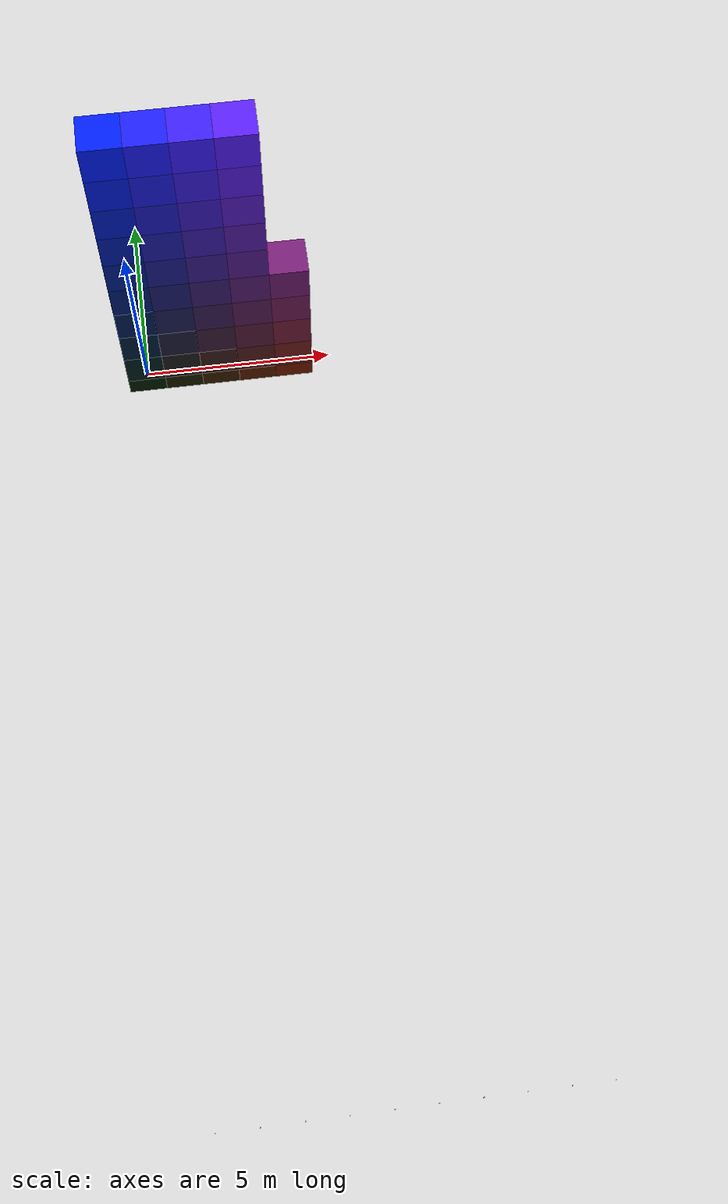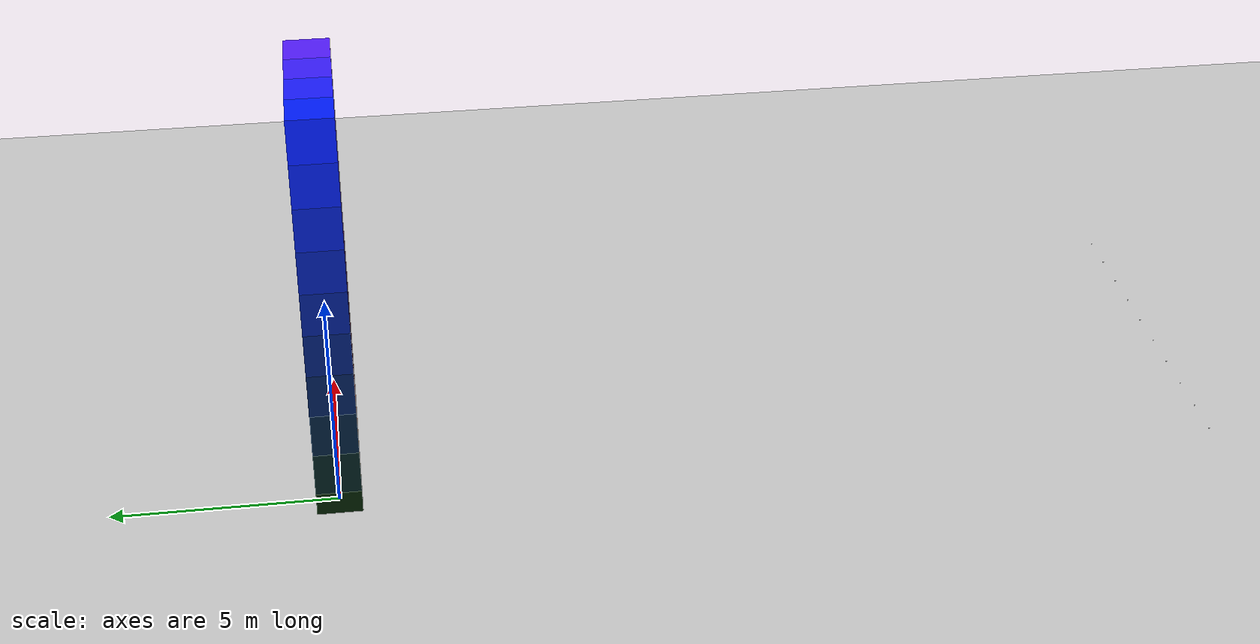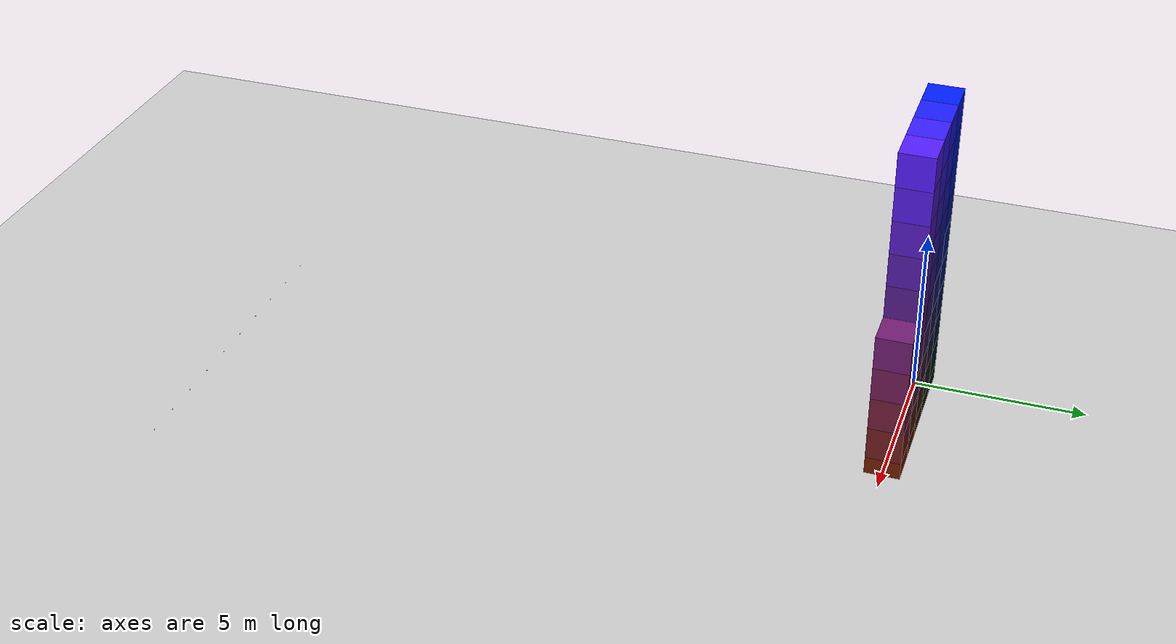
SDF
<sdf version="1.6">
 <world name="default">
  <model name="ground_plane">
   <static>true</static>
   <link name="link">
    <collision name="collision"><geometry><plane><normal>0 0 1</normal></plane></geometry></collision>
    <visual name="visual">
     <geometry><plane><normal>0 0 1</normal><size>100 100</size></plane></geometry>
     <material>
      <ambient>0.8 0.8 0.8 1</ambient>
      <diffuse>0.8 0.8 0.8 1</diffuse>
      <specular>0.8 0.8 0.8 1</specular>
     </material>
    </visual>
   </link>
  </model>
  <model name="camera_0">
   <static>true</static>
   <pose>0.0 -20 0 0 0 1.5707</pose>
   <link name="base_link">
    <visual name="camera_visual"><geometry><box><size>0.02 0.02 0.02</size></box></geometry></visual>
    <sensor name="camera_sensor_0" type="camera">
     <always_on>1</always_on>
     <update_rate>50</update_rate>
     <camera name="camera_front">
      <pose>0 0 0 0 -1.5707 1.5707</pose>
      <horizontal_fov>1.0472</horizontal_fov>
      <distortion><k1>0.0</k1><k2>0.0</k2><k3>0.0</k3><p1>0.0</p1><p2>0.0</p2><center>0.5 0.5</center></distortion>
      <image><width>1280</width><height>960</height><format>R8G8B8</format></image>
      <clip><near>0.01</near><far>300</far></clip>
      <noise><type>gaussian</type><mean>0</mean><stddev>0.007</stddev></noise>
     </camera>
    </sensor>
   </link>
  </model>
  <model name="camera_1">
   <static>true</static>
   <pose>1.0 -20 0 0 0 1.5707</pose>
   <link name="base_link">
    <visual name="camera_visual"><geometry><box><size>0.02 0.02 0.02</size></box></geometry></visual>
    <sensor name="camera_sensor_1" type="camera">
     <always_on>1</always_on>
     <update_rate>50</update_rate>
     <camera name="camera_front">
      <pose>0 0 0 0 -1.5707 1.5707</pose>
      <horizontal_fov>1.0472</horizontal_fov>
      <distortion><k1>0.0</k1><k2>0.0</k2><k3>0.0</k3><p1>0.0</p1><p2>0.0</p2><center>0.5 0.5</center></distortion>
      <image><width>1280</width><height>960</height><format>R8G8B8</format></image>
      <clip><near>0.01</near><far>300</far></clip>
      <noise><type>gaussian</type><mean>0</mean><stddev>0.007</stddev></noise>
     </camera>
    </sensor>
   </link>
  </model>
  <model name="camera_2">
   <static>true</static>
   <pose>2.0 -20 0 0 0 1.5707</pose>
   <link name="base_link">
    <visual name="camera_visual"><geometry><box><size>0.02 0.02 0.02</size></box></geometry></visual>
    <sensor name="camera_sensor_2" type="camera">
     <always_on>1</always_on>
     <update_rate>50</update_rate>
     <camera name="camera_front">
      <pose>0 0 0 0 -1.5707 1.5707</pose>
      <horizontal_fov>1.0472</horizontal_fov>
      <distortion><k1>0.0</k1><k2>0.0</k2><k3>0.0</k3><p1>0.0</p1><p2>0.0</p2><center>0.5 0.5</center></distortion>
      <image><width>1280</width><height>960</height><format>R8G8B8</format></image>
      <clip><near>0.01</near><far>300</far></clip>
      <noise><type>gaussian</type><mean>0</mean><stddev>0.007</stddev></noise>
     </camera>
    </sensor>
   </link>
  </model>
  <model name="camera_3">
   <static>true</static>
   <pose>3.0 -20 0 0 0 1.5707</pose>
   <link name="base_link">
    <visual name="camera_visual"><geometry><box><size>0.02 0.02 0.02</size></box></geometry></visual>
    <sensor name="camera_sensor_3" type="camera">
     <always_on>1</always_on>
     <update_rate>50</update_rate>
     <camera name="camera_front">
      <pose>0 0 0 0 -1.5707 1.5707</pose>
      <horizontal_fov>1.0472</horizontal_fov>
      <distortion><k1>0.0</k1><k2>0.0</k2><k3>0.0</k3><p1>0.0</p1><p2>0.0</p2><center>0.5 0.5</center></distortion>
      <image><width>1280</width><height>960</height><format>R8G8B8</format></image>
      <clip><near>0.01</near><far>300</far></clip>
      <noise><type>gaussian</type><mean>0</mean><stddev>0.007</stddev></noise>
     </camera>
    </sensor>
   </link>
  </model>
  <model name="camera_4">
   <static>true</static>
   <pose>4.0 -20 0 0 0 1.5707</pose>
   <link name="base_link">
    <visual name="camera_visual"><geometry><box><size>0.02 0.02 0.02</size></box></geometry></visual>
    <sensor name="camera_sensor_4" type="camera">
     <always_on>1</always_on>
     <update_rate>50</update_rate>
     <camera name="camera_front">
      <pose>0 0 0 0 -1.5707 1.5707</pose>
      <horizontal_fov>1.0472</horizontal_fov>
      <distortion><k1>0.0</k1><k2>0.0</k2><k3>0.0</k3><p1>0.0</p1><p2>0.0</p2><center>0.5 0.5</center></distortion>
      <image><width>1280</width><height>960</height><format>R8G8B8</format></image>
      <clip><near>0.01</near><far>300</far></clip>
      <noise><type>gaussian</type><mean>0</mean><stddev>0.007</stddev></noise>
     </camera>
    </sensor>
   </link>
  </model>
  <model name="camera_5">
   <static>true</static>
   <pose>5.0 -20 0 0 0 1.5707</pose>
   <link name="base_link">
    <visual name="camera_visual"><geometry><box><size>0.02 0.02 0.02</size></box></geometry></visual>
    <sensor name="camera_sensor_5" type="camera">
     <always_on>1</always_on>
     <update_rate>50</update_rate>
     <camera name="camera_front">
      <pose>0 0 0 0 -1.5707 1.5707</pose>
      <horizontal_fov>1.0472</horizontal_fov>
      <distortion><k1>0.0</k1><k2>0.0</k2><k3>0.0</k3><p1>0.0</p1><p2>0.0</p2><center>0.5 0.5</center></distortion>
      <image><width>1280</width><height>960</height><format>R8G8B8</format></image>
      <clip><near>0.01</near><far>300</far></clip>
      <noise><type>gaussian</type><mean>0</mean><stddev>0.007</stddev></noise>
     </camera>
    </sensor>
   </link>
  </model>
  <model name="camera_6">
   <static>true</static>
   <pose>6.0 -20 0 0 0 1.5707</pose>
   <link name="base_link">
    <visual name="camera_visual"><geometry><box><size>0.02 0.02 0.02</size></box></geometry></visual>
    <sensor name="camera_sensor_6" type="camera">
     <always_on>1</always_on>
     <update_rate>50</update_rate>
     <camera name="camera_front">
      <pose>0 0 0 0 -1.5707 1.5707</pose>
      <horizontal_fov>1.0472</horizontal_fov>
      <distortion><k1>0.0</k1><k2>0.0</k2><k3>0.0</k3><p1>0.0</p1><p2>0.0</p2><center>0.5 0.5</center></distortion>
      <image><width>1280</width><height>960</height><format>R8G8B8</format></image>
      <clip><near>0.01</near><far>300</far></clip>
      <noise><type>gaussian</type><mean>0</mean><stddev>0.007</stddev></noise>
     </camera>
    </sensor>
   </link>
  </model>
  <model name="camera_7">
   <static>true</static>
   <pose>7.0 -20 0 0 0 1.5707</pose>
   <link name="base_link">
    <visual name="camera_visual"><geometry><box><size>0.02 0.02 0.02</size></box></geometry></visual>
    <sensor name="camera_sensor_7" type="camera">
     <always_on>1</always_on>
     <update_rate>50</update_rate>
     <camera name="camera_front">
      <pose>0 0 0 0 -1.5707 1.5707</pose>
      <horizontal_fov>1.0472</horizontal_fov>
      <distortion><k1>0.0</k1><k2>0.0</k2><k3>0.0</k3><p1>0.0</p1><p2>0.0</p2><center>0.5 0.5</center></distortion>
      <image><width>1280</width><height>960</height><format>R8G8B8</format></image>
      <clip><near>0.01</near><far>300</far></clip>
      <noise><type>gaussian</type><mean>0</mean><stddev>0.007</stddev></noise>
     </camera>
    </sensor>
   </link>
  </model>
  <model name="camera_8">
   <static>true</static>
   <pose>8.0 -20 0 0 0 1.5707</pose>
   <link name="base_link">
    <visual name="camera_visual"><geometry><box><size>0.02 0.02 0.02</size></box></geometry></visual>
    <sensor name="camera_sensor_8" type="camera">
     <always_on>1</always_on>
     <update_rate>50</update_rate>
     <camera name="camera_front">
      <pose>0 0 0 0 -1.5707 1.5707</pose>
      <horizontal_fov>1.0472</horizontal_fov>
      <distortion><k1>0.0</k1><k2>0.0</k2><k3>0.0</k3><p1>0.0</p1><p2>0.0</p2><center>0.5 0.5</center></distortion>
      <image><width>1280</width><height>960</height><format>R8G8B8</format></image>
      <clip><near>0.01</near><far>300</far></clip>
      <noise><type>gaussian</type><mean>0</mean><stddev>0.007</stddev></noise>
     </camera>
    </sensor>
   </link>
  </model>
  <model name="camera_9">
   <static>true</static>
   <pose>9.0 -20 0 0 0 1.5707</pose>
   <link name="base_link">
    <visual name="camera_visual"><geometry><box><size>0.02 0.02 0.02</size></box></geometry></visual>
    <sensor name="camera_sensor_9" type="camera">
     <always_on>1</always_on>
     <update_rate>50</update_rate>
     <camera name="camera_front">
      <pose>0 0 0 0 -1.5707 1.5707</pose>
      <horizontal_fov>1.0472</horizontal_fov>
      <distortion><k1>0.0</k1><k2>0.0</k2><k3>0.0</k3><p1>0.0</p1><p2>0.0</p2><center>0.5 0.5</center></distortion>
      <image><width>1280</width><height>960</height><format>R8G8B8</format></image>
      <clip><near>0.01</near><far>300</far></clip>
      <noise><type>gaussian</type><mean>0</mean><stddev>0.007</stddev></noise>
     </camera>
    </sensor>
   </link>
  </model>
  <model name="model_0_1.0_0">
   <static>true</static>
   <link name="box_link">
    <inertial>
     <inertia><ixx>1</ixx><ixy>0</ixy><ixz>0</ixz><iyy>1</iyy><iyz>0</iyz><izz>1</izz></inertia>
     <mass>5.0</mass>
    </inertial>
    <collision name="box_collision"><geometry><box><size>1 1 1</size></box></geometry></collision>
    <visual name="box_visual">
     <geometry><box><size>1 1 1</size></box></geometry>
     <material>
      <ambient>0.0
              0.1111111111111111
              0.0
              1</ambient>
      <diffuse>0.0
              0.1111111111111111
              0.0
              1</diffuse>
      <specular>0.0
              0.1111111111111111
              0.0
              1</specular>
     </material>
    </visual>
   </link>
  </model>
  <model name="model_0_1.0_1">
   <static>true</static>
   <pose>0.0
        0.0
        1.0
        0.0
        0.0
        0.0</pose>
   <link name="box_link">
    <inertial>
     <inertia><ixx>1</ixx><ixy>0</ixy><ixz>0</ixz><iyy>1</iyy><iyz>0</iyz><izz>1</izz></inertia>
     <mass>5.0</mass>
    </inertial>
    <collision name="box_collision"><geometry><box><size>1 1 1</size></box></geometry></collision>
    <visual name="box_visual">
     <geometry><box><size>1 1 1</size></box></geometry>
     <material>
      <ambient>0.0
              0.1111111111111111
              0.1111111111111111
              1</ambient>
      <diffuse>0.0
              0.1111111111111111
              0.1111111111111111
              1</diffuse>
      <specular>0.0
              0.1111111111111111
              0.1111111111111111
              1</specular>
     </material>
    </visual>
   </link>
  </model>
  <model name="model_0_1.0_2">
   <static>true</static>
   <pose>0.0
        0.0
        2.0
        0.0
        0.0
        0.0</pose>
   <link name="box_link">
    <inertial>
     <inertia><ixx>1</ixx><ixy>0</ixy><ixz>0</ixz><iyy>1</iyy><iyz>0</iyz><izz>1</izz></inertia>
     <mass>5.0</mass>
    </inertial>
    <collision name="box_collision"><geometry><box><size>1 1 1</size></box></geometry></collision>
    <visual name="box_visual">
     <geometry><box><size>1 1 1</size></box></geometry>
     <material>
      <ambient>0.0
              0.1111111111111111
              0.2222222222222222
              1</ambient>
      <diffuse>0.0
              0.1111111111111111
              0.2222222222222222
              1</diffuse>
      <specular>0.0
              0.1111111111111111
              0.2222222222222222
              1</specular>
     </material>
    </visual>
   </link>
  </model>
  <model name="model_0_1.0_3">
   <static>true</static>
   <pose>0.0
        0.0
        3.0
        0.0
        0.0
        0.0</pose>
   <link name="box_link">
    <inertial>
     <inertia><ixx>1</ixx><ixy>0</ixy><ixz>0</ixz><iyy>1</iyy><iyz>0</iyz><izz>1</izz></inertia>
     <mass>5.0</mass>
    </inertial>
    <collision name="box_collision"><geometry><box><size>1 1 1</size></box></geometry></collision>
    <visual name="box_visual">
     <geometry><box><size>1 1 1</size></box></geometry>
     <material>
      <ambient>0.0
              0.1111111111111111
              0.3333333333333333
              1</ambient>
      <diffuse>0.0
              0.1111111111111111
              0.3333333333333333
              1</diffuse>
      <specular>0.0
              0.1111111111111111
              0.3333333333333333
              1</specular>
     </material>
    </visual>
   </link>
  </model>
  <model name="model_0_1.0_4">
   <static>true</static>
   <pose>0.0
        0.0
        4.0
        0.0
        0.0
        0.0</pose>
   <link name="box_link">
    <inertial>
     <inertia><ixx>1</ixx><ixy>0</ixy><ixz>0</ixz><iyy>1</iyy><iyz>0</iyz><izz>1</izz></inertia>
     <mass>5.0</mass>
    </inertial>
    <collision name="box_collision"><geometry><box><size>1 1 1</size></box></geometry></collision>
    <visual name="box_visual">
     <geometry><box><size>1 1 1</size></box></geometry>
     <material>
      <ambient>0.0
              0.1111111111111111
              0.4444444444444444
              1</ambient>
      <diffuse>0.0
              0.1111111111111111
              0.4444444444444444
              1</diffuse>
      <specular>0.0
              0.1111111111111111
              0.4444444444444444
              1</specular>
     </material>
    </visual>
   </link>
  </model>
  <model name="model_0_1.0_5">
   <static>true</static>
   <pose>0.0
        0.0
        5.0
        0.0
        0.0
        0.0</pose>
   <link name="box_link">
    <inertial>
     <inertia><ixx>1</ixx><ixy>0</ixy><ixz>0</ixz><iyy>1</iyy><iyz>0</iyz><izz>1</izz></inertia>
     <mass>5.0</mass>
    </inertial>
    <collision name="box_collision"><geometry><box><size>1 1 1</size></box></geometry></collision>
    <visual name="box_visual">
     <geometry><box><size>1 1 1</size></box></geometry>
     <material>
      <ambient>0.0
              0.1111111111111111
              0.5555555555555556
              1</ambient>
      <diffuse>0.0
              0.1111111111111111
              0.5555555555555556
              1</diffuse>
      <specular>0.0
              0.1111111111111111
              0.5555555555555556
              1</specular>
     </material>
    </visual>
   </link>
  </model>
  <model name="model_0_1.0_6">
   <static>true</static>
   <pose>0.0
        0.0
        6.0
        0.0
        0.0
        0.0</pose>
   <link name="box_link">
    <inertial>
     <inertia><ixx>1</ixx><ixy>0</ixy><ixz>0</ixz><iyy>1</iyy><iyz>0</iyz><izz>1</izz></inertia>
     <mass>5.0</mass>
    </inertial>
    <collision name="box_collision"><geometry><box><size>1 1 1</size></box></geometry></collision>
    <visual name="box_visual">
     <geometry><box><size>1 1 1</size></box></geometry>
     <material>
      <ambient>0.0
              0.1111111111111111
              0.6666666666666666
              1</ambient>
      <diffuse>0.0
              0.1111111111111111
              0.6666666666666666
              1</diffuse>
      <specular>0.0
              0.1111111111111111
              0.6666666666666666
              1</specular>
     </material>
    </visual>
   </link>
  </model>
  <model name="model_0_1.0_7">
   <static>true</static>
   <pose>0.0
        0.0
        7.0
        0.0
        0.0
        0.0</pose>
   <link name="box_link">
    <inertial>
     <inertia><ixx>1</ixx><ixy>0</ixy><ixz>0</ixz><iyy>1</iyy><iyz>0</iyz><izz>1</izz></inertia>
     <mass>5.0</mass>
    </inertial>
    <collision name="box_collision"><geometry><box><size>1 1 1</size></box></geometry></collision>
    <visual name="box_visual">
     <geometry><box><size>1 1 1</size></box></geometry>
     <material>
      <ambient>0.0
              0.1111111111111111
              0.7777777777777778
              1</ambient>
      <diffuse>0.0
              0.1111111111111111
              0.7777777777777778
              1</diffuse>
      <specular>0.0
              0.1111111111111111
              0.7777777777777778
              1</specular>
     </material>
    </visual>
   </link>
  </model>
  <model name="model_0_1.0_8">
   <static>true</static>
   <pose>0.0
        0.0
        8.0
        0.0
        0.0
        0.0</pose>
   <link name="box_link">
    <inertial>
     <inertia><ixx>1</ixx><ixy>0</ixy><ixz>0</ixz><iyy>1</iyy><iyz>0</iyz><izz>1</izz></inertia>
     <mass>5.0</mass>
    </inertial>
    <collision name="box_collision"><geometry><box><size>1 1 1</size></box></geometry></collision>
    <visual name="box_visual">
     <geometry><box><size>1 1 1</size></box></geometry>
     <material>
      <ambient>0.0
              0.1111111111111111
              0.8888888888888888
              1</ambient>
      <diffuse>0.0
              0.1111111111111111
              0.8888888888888888
              1</diffuse>
      <specular>0.0
              0.1111111111111111
              0.8888888888888888
              1</specular>
     </material>
    </visual>
   </link>
  </model>
  <model name="model_0_1.0_9">
   <static>true</static>
   <pose>0.0
        0.0
        9.0
        0.0
        0.0
        0.0</pose>
   <link name="box_link">
    <inertial>
     <inertia><ixx>1</ixx><ixy>0</ixy><ixz>0</ixz><iyy>1</iyy><iyz>0</iyz><izz>1</izz></inertia>
     <mass>5.0</mass>
    </inertial>
    <collision name="box_collision"><geometry><box><size>1 1 1</size></box></geometry></collision>
    <visual name="box_visual">
     <geometry><box><size>1 1 1</size></box></geometry>
     <material>
      <ambient>0.0
              0.1111111111111111
              1.0
              1</ambient>
      <diffuse>0.0
              0.1111111111111111
              1.0
              1</diffuse>
      <specular>0.0
              0.1111111111111111
              1.0
              1</specular>
     </material>
    </visual>
   </link>
  </model>
  <model name="model_1_1.0_0">
   <static>true</static>
   <pose>1.0
        0.0
        0.0
        0.0
        0.0
        0.0</pose>
   <link name="box_link">
    <inertial>
     <inertia><ixx>1</ixx><ixy>0</ixy><ixz>0</ixz><iyy>1</iyy><iyz>0</iyz><izz>1</izz></inertia>
     <mass>5.0</mass>
    </inertial>
    <collision name="box_collision"><geometry><box><size>1 1 1</size></box></geometry></collision>
    <visual name="box_visual">
     <geometry><box><size>1 1 1</size></box></geometry>
     <material>
      <ambient>0.1111111111111111
              0.1111111111111111
              0.0
              1</ambient>
      <diffuse>0.1111111111111111
              0.1111111111111111
              0.0
              1</diffuse>
      <specular>0.1111111111111111
              0.1111111111111111
              0.0
              1</specular>
     </material>
    </visual>
   </link>
  </model>
  <model name="model_1_1.0_1">
   <static>true</static>
   <pose>1.0
        0.0
        1.0
        0.0
        0.0
        0.0</pose>
   <link name="box_link">
    <inertial>
     <inertia><ixx>1</ixx><ixy>0</ixy><ixz>0</ixz><iyy>1</iyy><iyz>0</iyz><izz>1</izz></inertia>
     <mass>5.0</mass>
    </inertial>
    <collision name="box_collision"><geometry><box><size>1 1 1</size></box></geometry></collision>
    <visual name="box_visual">
     <geometry><box><size>1 1 1</size></box></geometry>
     <material>
      <ambient>0.1111111111111111
              0.1111111111111111
              0.1111111111111111
              1</ambient>
      <diffuse>0.1111111111111111
              0.1111111111111111
              0.1111111111111111
              1</diffuse>
      <specular>0.1111111111111111
              0.1111111111111111
              0.1111111111111111
              1</specular>
     </material>
    </visual>
   </link>
  </model>
  <model name="model_1_1.0_2">
   <static>true</static>
   <pose>1.0
        0.0
        2.0
        0.0
        0.0
        0.0</pose>
   <link name="box_link">
    <inertial>
     <inertia><ixx>1</ixx><ixy>0</ixy><ixz>0</ixz><iyy>1</iyy><iyz>0</iyz><izz>1</izz></inertia>
     <mass>5.0</mass>
    </inertial>
    <collision name="box_collision"><geometry><box><size>1 1 1</size></box></geometry></collision>
    <visual name="box_visual">
     <geometry><box><size>1 1 1</size></box></geometry>
     <material>
      <ambient>0.1111111111111111
              0.1111111111111111
              0.2222222222222222
              1</ambient>
      <diffuse>0.1111111111111111
              0.1111111111111111
              0.2222222222222222
              1</diffuse>
      <specular>0.1111111111111111
              0.1111111111111111
              0.2222222222222222
              1</specular>
     </material>
    </visual>
   </link>
  </model>
  <model name="model_1_1.0_3">
   <static>true</static>
   <pose>1.0
        0.0
        3.0
        0.0
        0.0
        0.0</pose>
   <link name="box_link">
    <inertial>
     <inertia><ixx>1</ixx><ixy>0</ixy><ixz>0</ixz><iyy>1</iyy><iyz>0</iyz><izz>1</izz></inertia>
     <mass>5.0</mass>
    </inertial>
    <collision name="box_collision"><geometry><box><size>1 1 1</size></box></geometry></collision>
    <visual name="box_visual">
     <geometry><box><size>1 1 1</size></box></geometry>
     <material>
      <ambient>0.1111111111111111
              0.1111111111111111
              0.3333333333333333
              1</ambient>
      <diffuse>0.1111111111111111
              0.1111111111111111
              0.3333333333333333
              1</diffuse>
      <specular>0.1111111111111111
              0.1111111111111111
              0.3333333333333333
              1</specular>
     </material>
    </visual>
   </link>
  </model>
  <model name="model_1_1.0_4">
   <static>true</static>
   <pose>1.0
        0.0
        4.0
        0.0
        0.0
        0.0</pose>
   <link name="box_link">
    <inertial>
     <inertia><ixx>1</ixx><ixy>0</ixy><ixz>0</ixz><iyy>1</iyy><iyz>0</iyz><izz>1</izz></inertia>
     <mass>5.0</mass>
    </inertial>
    <collision name="box_collision"><geometry><box><size>1 1 1</size></box></geometry></collision>
    <visual name="box_visual">
     <geometry><box><size>1 1 1</size></box></geometry>
     <material>
      <ambient>0.1111111111111111
              0.1111111111111111
              0.4444444444444444
              1</ambient>
      <diffuse>0.1111111111111111
              0.1111111111111111
              0.4444444444444444
              1</diffuse>
      <specular>0.1111111111111111
              0.1111111111111111
              0.4444444444444444
              1</specular>
     </material>
    </visual>
   </link>
  </model>
  <model name="model_1_1.0_5">
   <static>true</static>
   <pose>1.0
        0.0
        5.0
        0.0
        0.0
        0.0</pose>
   <link name="box_link">
    <inertial>
     <inertia><ixx>1</ixx><ixy>0</ixy><ixz>0</ixz><iyy>1</iyy><iyz>0</iyz><izz>1</izz></inertia>
     <mass>5.0</mass>
    </inertial>
    <collision name="box_collision"><geometry><box><size>1 1 1</size></box></geometry></collision>
    <visual name="box_visual">
     <geometry><box><size>1 1 1</size></box></geometry>
     <material>
      <ambient>0.1111111111111111
              0.1111111111111111
              0.5555555555555556
              1</ambient>
      <diffuse>0.1111111111111111
              0.1111111111111111
              0.5555555555555556
              1</diffuse>
      <specular>0.1111111111111111
              0.1111111111111111
              0.5555555555555556
              1</specular>
     </material>
    </visual>
   </link>
  </model>
  <model name="model_1_1.0_6">
   <static>true</static>
   <pose>1.0
        0.0
        6.0
        0.0
        0.0
        0.0</pose>
   <link name="box_link">
    <inertial>
     <inertia><ixx>1</ixx><ixy>0</ixy><ixz>0</ixz><iyy>1</iyy><iyz>0</iyz><izz>1</izz></inertia>
     <mass>5.0</mass>
    </inertial>
    <collision name="box_collision"><geometry><box><size>1 1 1</size></box></geometry></collision>
    <visual name="box_visual">
     <geometry><box><size>1 1 1</size></box></geometry>
     <material>
      <ambient>0.1111111111111111
              0.1111111111111111
              0.6666666666666666
              1</ambient>
      <diffuse>0.1111111111111111
              0.1111111111111111
              0.6666666666666666
              1</diffuse>
      <specular>0.1111111111111111
              0.1111111111111111
              0.6666666666666666
              1</specular>
     </material>
    </visual>
   </link>
  </model>
  <model name="model_1_1.0_7">
   <static>true</static>
   <pose>1.0
        0.0
        7.0
        0.0
        0.0
        0.0</pose>
   <link name="box_link">
    <inertial>
     <inertia><ixx>1</ixx><ixy>0</ixy><ixz>0</ixz><iyy>1</iyy><iyz>0</iyz><izz>1</izz></inertia>
     <mass>5.0</mass>
    </inertial>
    <collision name="box_collision"><geometry><box><size>1 1 1</size></box></geometry></collision>
    <visual name="box_visual">
     <geometry><box><size>1 1 1</size></box></geometry>
     <material>
      <ambient>0.1111111111111111
              0.1111111111111111
              0.7777777777777778
              1</ambient>
      <diffuse>0.1111111111111111
              0.1111111111111111
              0.7777777777777778
              1</diffuse>
      <specular>0.1111111111111111
              0.1111111111111111
              0.7777777777777778
              1</specular>
     </material>
    </visual>
   </link>
  </model>
  <model name="model_1_1.0_8">
   <static>true</static>
   <pose>1.0
        0.0
        8.0
        0.0
        0.0
        0.0</pose>
   <link name="box_link">
    <inertial>
     <inertia><ixx>1</ixx><ixy>0</ixy><ixz>0</ixz><iyy>1</iyy><iyz>0</iyz><izz>1</izz></inertia>
     <mass>5.0</mass>
    </inertial>
    <collision name="box_collision"><geometry><box><size>1 1 1</size></box></geometry></collision>
    <visual name="box_visual">
     <geometry><box><size>1 1 1</size></box></geometry>
     <material>
      <ambient>0.1111111111111111
              0.1111111111111111
              0.8888888888888888
              1</ambient>
      <diffuse>0.1111111111111111
              0.1111111111111111
              0.8888888888888888
              1</diffuse>
      <specular>0.1111111111111111
              0.1111111111111111
              0.8888888888888888
              1</specular>
     </material>
    </visual>
   </link>
  </model>
  <model name="model_1_1.0_9">
   <static>true</static>
   <pose>1.0
        0.0
        9.0
        0.0
        0.0
        0.0</pose>
   <link name="box_link">
    <inertial>
     <inertia><ixx>1</ixx><ixy>0</ixy><ixz>0</ixz><iyy>1</iyy><iyz>0</iyz><izz>1</izz></inertia>
     <mass>5.0</mass>
    </inertial>
    <collision name="box_collision"><geometry><box><size>1 1 1</size></box></geometry></collision>
    <visual name="box_visual">
     <geometry><box><size>1 1 1</size></box></geometry>
     <material>
      <ambient>0.1111111111111111
              0.1111111111111111
              1.0
              1</ambient>
      <diffuse>0.1111111111111111
              0.1111111111111111
              1.0
              1</diffuse>
      <specular>0.1111111111111111
              0.1111111111111111
              1.0
              1</specular>
     </material>
    </visual>
   </link>
  </model>
  <model name="model_2_1.0_0">
   <static>true</static>
   <pose>2.0
        0.0
        0.0
        0.0
        0.0
        0.0</pose>
   <link name="box_link">
    <inertial>
     <inertia><ixx>1</ixx><ixy>0</ixy><ixz>0</ixz><iyy>1</iyy><iyz>0</iyz><izz>1</izz></inertia>
     <mass>5.0</mass>
    </inertial>
    <collision name="box_collision"><geometry><box><size>1 1 1</size></box></geometry></collision>
    <visual name="box_visual">
     <geometry><box><size>1 1 1</size></box></geometry>
     <material>
      <ambient>0.2222222222222222
              0.1111111111111111
              0.0
              1</ambient>
      <diffuse>0.2222222222222222
              0.1111111111111111
              0.0
              1</diffuse>
      <specular>0.2222222222222222
              0.1111111111111111
              0.0
              1</specular>
     </material>
    </visual>
   </link>
  </model>
  <model name="model_2_1.0_1">
   <static>true</static>
   <pose>2.0
        0.0
        1.0
        0.0
        0.0
        0.0</pose>
   <link name="box_link">
    <inertial>
     <inertia><ixx>1</ixx><ixy>0</ixy><ixz>0</ixz><iyy>1</iyy><iyz>0</iyz><izz>1</izz></inertia>
     <mass>5.0</mass>
    </inertial>
    <collision name="box_collision"><geometry><box><size>1 1 1</size></box></geometry></collision>
    <visual name="box_visual">
     <geometry><box><size>1 1 1</size></box></geometry>
     <material>
      <ambient>0.2222222222222222
              0.1111111111111111
              0.1111111111111111
              1</ambient>
      <diffuse>0.2222222222222222
              0.1111111111111111
              0.1111111111111111
              1</diffuse>
      <specular>0.2222222222222222
              0.1111111111111111
              0.1111111111111111
              1</specular>
     </material>
    </visual>
   </link>
  </model>
  <model name="model_2_1.0_2">
   <static>true</static>
   <pose>2.0
        0.0
        2.0
        0.0
        0.0
        0.0</pose>
   <link name="box_link">
    <inertial>
     <inertia><ixx>1</ixx><ixy>0</ixy><ixz>0</ixz><iyy>1</iyy><iyz>0</iyz><izz>1</izz></inertia>
     <mass>5.0</mass>
    </inertial>
    <collision name="box_collision"><geometry><box><size>1 1 1</size></box></geometry></collision>
    <visual name="box_visual">
     <geometry><box><size>1 1 1</size></box></geometry>
     <material>
      <ambient>0.2222222222222222
              0.1111111111111111
              0.2222222222222222
              1</ambient>
      <diffuse>0.2222222222222222
              0.1111111111111111
              0.2222222222222222
              1</diffuse>
      <specular>0.2222222222222222
              0.1111111111111111
              0.2222222222222222
              1</specular>
     </material>
    </visual>
   </link>
  </model>
  <model name="model_2_1.0_3">
   <static>true</static>
   <pose>2.0
        0.0
        3.0
        0.0
        0.0
        0.0</pose>
   <link name="box_link">
    <inertial>
     <inertia><ixx>1</ixx><ixy>0</ixy><ixz>0</ixz><iyy>1</iyy><iyz>0</iyz><izz>1</izz></inertia>
     <mass>5.0</mass>
    </inertial>
    <collision name="box_collision"><geometry><box><size>1 1 1</size></box></geometry></collision>
    <visual name="box_visual">
     <geometry><box><size>1 1 1</size></box></geometry>
     <material>
      <ambient>0.2222222222222222
              0.1111111111111111
              0.3333333333333333
              1</ambient>
      <diffuse>0.2222222222222222
              0.1111111111111111
              0.3333333333333333
              1</diffuse>
      <specular>0.2222222222222222
              0.1111111111111111
              0.3333333333333333
              1</specular>
     </material>
    </visual>
   </link>
  </model>
  <model name="model_2_1.0_4">
   <static>true</static>
   <pose>2.0
        0.0
        4.0
        0.0
        0.0
        0.0</pose>
   <link name="box_link">
    <inertial>
     <inertia><ixx>1</ixx><ixy>0</ixy><ixz>0</ixz><iyy>1</iyy><iyz>0</iyz><izz>1</izz></inertia>
     <mass>5.0</mass>
    </inertial>
    <collision name="box_collision"><geometry><box><size>1 1 1</size></box></geometry></collision>
    <visual name="box_visual">
     <geometry><box><size>1 1 1</size></box></geometry>
     <material>
      <ambient>0.2222222222222222
              0.1111111111111111
              0.4444444444444444
              1</ambient>
      <diffuse>0.2222222222222222
              0.1111111111111111
              0.4444444444444444
              1</diffuse>
      <specular>0.2222222222222222
              0.1111111111111111
              0.4444444444444444
              1</specular>
     </material>
    </visual>
   </link>
  </model>
  <model name="model_2_1.0_5">
   <static>true</static>
   <pose>2.0
        0.0
        5.0
        0.0
        0.0
        0.0</pose>
   <link name="box_link">
    <inertial>
     <inertia><ixx>1</ixx><ixy>0</ixy><ixz>0</ixz><iyy>1</iyy><iyz>0</iyz><izz>1</izz></inertia>
     <mass>5.0</mass>
    </inertial>
    <collision name="box_collision"><geometry><box><size>1 1 1</size></box></geometry></collision>
    <visual name="box_visual">
     <geometry><box><size>1 1 1</size></box></geometry>
     <material>
      <ambient>0.2222222222222222
              0.1111111111111111
              0.5555555555555556
              1</ambient>
      <diffuse>0.2222222222222222
              0.1111111111111111
              0.5555555555555556
              1</diffuse>
      <specular>0.2222222222222222
              0.1111111111111111
              0.5555555555555556
              1</specular>
     </material>
    </visual>
   </link>
  </model>
  <model name="model_2_1.0_6">
   <static>true</static>
   <pose>2.0
        0.0
        6.0
        0.0
        0.0
        0.0</pose>
   <link name="box_link">
    <inertial>
     <inertia><ixx>1</ixx><ixy>0</ixy><ixz>0</ixz><iyy>1</iyy><iyz>0</iyz><izz>1</izz></inertia>
     <mass>5.0</mass>
    </inertial>
    <collision name="box_collision"><geometry><box><size>1 1 1</size></box></geometry></collision>
    <visual name="box_visual">
     <geometry><box><size>1 1 1</size></box></geometry>
     <material>
      <ambient>0.2222222222222222
              0.1111111111111111
              0.6666666666666666
              1</ambient>
      <diffuse>0.2222222222222222
              0.1111111111111111
              0.6666666666666666
              1</diffuse>
      <specular>0.2222222222222222
              0.1111111111111111
              0.6666666666666666
              1</specular>
     </material>
    </visual>
   </link>
  </model>
  <model name="model_2_1.0_7">
   <static>true</static>
   <pose>2.0
        0.0
        7.0
        0.0
        0.0
        0.0</pose>
   <link name="box_link">
    <inertial>
     <inertia><ixx>1</ixx><ixy>0</ixy><ixz>0</ixz><iyy>1</iyy><iyz>0</iyz><izz>1</izz></inertia>
     <mass>5.0</mass>
    </inertial>
    <collision name="box_collision"><geometry><box><size>1 1 1</size></box></geometry></collision>
    <visual name="box_visual">
     <geometry><box><size>1 1 1</size></box></geometry>
     <material>
      <ambient>0.2222222222222222
              0.1111111111111111
              0.7777777777777778
              1</ambient>
      <diffuse>0.2222222222222222
              0.1111111111111111
              0.7777777777777778
              1</diffuse>
      <specular>0.2222222222222222
              0.1111111111111111
              0.7777777777777778
              1</specular>
     </material>
    </visual>
   </link>
  </model>
  <model name="model_2_1.0_8">
   <static>true</static>
   <pose>2.0
        0.0
        8.0
        0.0
        0.0
        0.0</pose>
   <link name="box_link">
    <inertial>
     <inertia><ixx>1</ixx><ixy>0</ixy><ixz>0</ixz><iyy>1</iyy><iyz>0</iyz><izz>1</izz></inertia>
     <mass>5.0</mass>
    </inertial>
    <collision name="box_collision"><geometry><box><size>1 1 1</size></box></geometry></collision>
    <visual name="box_visual">
     <geometry><box><size>1 1 1</size></box></geometry>
     <material>
      <ambient>0.2222222222222222
              0.1111111111111111
              0.8888888888888888
              1</ambient>
      <diffuse>0.2222222222222222
              0.1111111111111111
              0.8888888888888888
              1</diffuse>
      <specular>0.2222222222222222
              0.1111111111111111
              0.8888888888888888
              1</specular>
     </material>
    </visual>
   </link>
  </model>
  <model name="model_2_1.0_9">
   <static>true</static>
   <pose>2.0
        0.0
        9.0
        0.0
        0.0
        0.0</pose>
   <link name="box_link">
    <inertial>
     <inertia><ixx>1</ixx><ixy>0</ixy><ixz>0</ixz><iyy>1</iyy><iyz>0</iyz><izz>1</izz></inertia>
     <mass>5.0</mass>
    </inertial>
    <collision name="box_collision"><geometry><box><size>1 1 1</size></box></geometry></collision>
    <visual name="box_visual">
     <geometry><box><size>1 1 1</size></box></geometry>
     <material>
      <ambient>0.2222222222222222
              0.1111111111111111
              1.0
              1</ambient>
      <diffuse>0.2222222222222222
              0.1111111111111111
              1.0
              1</diffuse>
      <specular>0.2222222222222222
              0.1111111111111111
              1.0
              1</specular>
     </material>
    </visual>
   </link>
  </model>
  <model name="model_3_1.0_0">
   <static>true</static>
   <pose>3.0
        0.0
        0.0
        0.0
        0.0
        0.0</pose>
   <link name="box_link">
    <inertial>
     <inertia><ixx>1</ixx><ixy>0</ixy><ixz>0</ixz><iyy>1</iyy><iyz>0</iyz><izz>1</izz></inertia>
     <mass>5.0</mass>
    </inertial>
    <collision name="box_collision"><geometry><box><size>1 1 1</size></box></geometry></collision>
    <visual name="box_visual">
     <geometry><box><size>1 1 1</size></box></geometry>
     <material>
      <ambient>0.3333333333333333
              0.1111111111111111
              0.0
              1</ambient>
      <diffuse>0.3333333333333333
              0.1111111111111111
              0.0
              1</diffuse>
      <specular>0.3333333333333333
              0.1111111111111111
              0.0
              1</specular>
     </material>
    </visual>
   </link>
  </model>
  <model name="model_3_1.0_1">
   <static>true</static>
   <pose>3.0
        0.0
        1.0
        0.0
        0.0
        0.0</pose>
   <link name="box_link">
    <inertial>
     <inertia><ixx>1</ixx><ixy>0</ixy><ixz>0</ixz><iyy>1</iyy><iyz>0</iyz><izz>1</izz></inertia>
     <mass>5.0</mass>
    </inertial>
    <collision name="box_collision"><geometry><box><size>1 1 1</size></box></geometry></collision>
    <visual name="box_visual">
     <geometry><box><size>1 1 1</size></box></geometry>
     <material>
      <ambient>0.3333333333333333
              0.1111111111111111
              0.1111111111111111
              1</ambient>
      <diffuse>0.3333333333333333
              0.1111111111111111
              0.1111111111111111
              1</diffuse>
      <specular>0.3333333333333333
              0.1111111111111111
              0.1111111111111111
              1</specular>
     </material>
    </visual>
   </link>
  </model>
  <model name="model_3_1.0_2">
   <static>true</static>
   <pose>3.0
        0.0
        2.0
        0.0
        0.0
        0.0</pose>
   <link name="box_link">
    <inertial>
     <inertia><ixx>1</ixx><ixy>0</ixy><ixz>0</ixz><iyy>1</iyy><iyz>0</iyz><izz>1</izz></inertia>
     <mass>5.0</mass>
    </inertial>
    <collision name="box_collision"><geometry><box><size>1 1 1</size></box></geometry></collision>
    <visual name="box_visual">
     <geometry><box><size>1 1 1</size></box></geometry>
     <material>
      <ambient>0.3333333333333333
              0.1111111111111111
              0.2222222222222222
              1</ambient>
      <diffuse>0.3333333333333333
              0.1111111111111111
              0.2222222222222222
              1</diffuse>
      <specular>0.3333333333333333
              0.1111111111111111
              0.2222222222222222
              1</specular>
     </material>
    </visual>
   </link>
  </model>
  <model name="model_3_1.0_3">
   <static>true</static>
   <pose>3.0
        0.0
        3.0
        0.0
        0.0
        0.0</pose>
   <link name="box_link">
    <inertial>
     <inertia><ixx>1</ixx><ixy>0</ixy><ixz>0</ixz><iyy>1</iyy><iyz>0</iyz><izz>1</izz></inertia>
     <mass>5.0</mass>
    </inertial>
    <collision name="box_collision"><geometry><box><size>1 1 1</size></box></geometry></collision>
    <visual name="box_visual">
     <geometry><box><size>1 1 1</size></box></geometry>
     <material>
      <ambient>0.3333333333333333
              0.1111111111111111
              0.3333333333333333
              1</ambient>
      <diffuse>0.3333333333333333
              0.1111111111111111
              0.3333333333333333
              1</diffuse>
      <specular>0.3333333333333333
              0.1111111111111111
              0.3333333333333333
              1</specular>
     </material>
    </visual>
   </link>
  </model>
  <model name="model_3_1.0_4">
   <static>true</static>
   <pose>3.0
        0.0
        4.0
        0.0
        0.0
        0.0</pose>
   <link name="box_link">
    <inertial>
     <inertia><ixx>1</ixx><ixy>0</ixy><ixz>0</ixz><iyy>1</iyy><iyz>0</iyz><izz>1</izz></inertia>
     <mass>5.0</mass>
    </inertial>
    <collision name="box_collision"><geometry><box><size>1 1 1</size></box></geometry></collision>
    <visual name="box_visual">
     <geometry><box><size>1 1 1</size></box></geometry>
     <material>
      <ambient>0.3333333333333333
              0.1111111111111111
              0.4444444444444444
              1</ambient>
      <diffuse>0.3333333333333333
              0.1111111111111111
              0.4444444444444444
              1</diffuse>
      <specular>0.3333333333333333
              0.1111111111111111
              0.4444444444444444
              1</specular>
     </material>
    </visual>
   </link>
  </model>
  <model name="model_3_1.0_5">
   <static>true</static>
   <pose>3.0
        0.0
        5.0
        0.0
        0.0
        0.0</pose>
   <link name="box_link">
    <inertial>
     <inertia><ixx>1</ixx><ixy>0</ixy><ixz>0</ixz><iyy>1</iyy><iyz>0</iyz><izz>1</izz></inertia>
     <mass>5.0</mass>
    </inertial>
    <collision name="box_collision"><geometry><box><size>1 1 1</size></box></geometry></collision>
    <visual name="box_visual">
     <geometry><box><size>1 1 1</size></box></geometry>
     <material>
      <ambient>0.3333333333333333
              0.1111111111111111
              0.5555555555555556
              1</ambient>
      <diffuse>0.3333333333333333
              0.1111111111111111
              0.5555555555555556
              1</diffuse>
      <specular>0.3333333333333333
              0.1111111111111111
              0.5555555555555556
              1</specular>
     </material>
    </visual>
   </link>
  </model>
  <model name="model_3_1.0_6">
   <static>true</static>
   <pose>3.0
        0.0
        6.0
        0.0
        0.0
        0.0</pose>
   <link name="box_link">
    <inertial>
     <inertia><ixx>1</ixx><ixy>0</ixy><ixz>0</ixz><iyy>1</iyy><iyz>0</iyz><izz>1</izz></inertia>
     <mass>5.0</mass>
    </inertial>
    <collision name="box_collision"><geometry><box><size>1 1 1</size></box></geometry></collision>
    <visual name="box_visual">
     <geometry><box><size>1 1 1</size></box></geometry>
     <material>
      <ambient>0.3333333333333333
              0.1111111111111111
              0.6666666666666666
              1</ambient>
      <diffuse>0.3333333333333333
              0.1111111111111111
              0.6666666666666666
              1</diffuse>
      <specular>0.3333333333333333
              0.1111111111111111
              0.6666666666666666
              1</specular>
     </material>
    </visual>
   </link>
  </model>
  <model name="model_3_1.0_7">
   <static>true</static>
   <pose>3.0
        0.0
        7.0
        0.0
        0.0
        0.0</pose>
   <link name="box_link">
    <inertial>
     <inertia><ixx>1</ixx><ixy>0</ixy><ixz>0</ixz><iyy>1</iyy><iyz>0</iyz><izz>1</izz></inertia>
     <mass>5.0</mass>
    </inertial>
    <collision name="box_collision"><geometry><box><size>1 1 1</size></box></geometry></collision>
    <visual name="box_visual">
     <geometry><box><size>1 1 1</size></box></geometry>
     <material>
      <ambient>0.3333333333333333
              0.1111111111111111
              0.7777777777777778
              1</ambient>
      <diffuse>0.3333333333333333
              0.1111111111111111
              0.7777777777777778
              1</diffuse>
      <specular>0.3333333333333333
              0.1111111111111111
              0.7777777777777778
              1</specular>
     </material>
    </visual>
   </link>
  </model>
  <model name="model_3_1.0_8">
   <static>true</static>
   <pose>3.0
        0.0
        8.0
        0.0
        0.0
        0.0</pose>
   <link name="box_link">
    <inertial>
     <inertia><ixx>1</ixx><ixy>0</ixy><ixz>0</ixz><iyy>1</iyy><iyz>0</iyz><izz>1</izz></inertia>
     <mass>5.0</mass>
    </inertial>
    <collision name="box_collision"><geometry><box><size>1 1 1</size></box></geometry></collision>
    <visual name="box_visual">
     <geometry><box><size>1 1 1</size></box></geometry>
     <material>
      <ambient>0.3333333333333333
              0.1111111111111111
              0.8888888888888888
              1</ambient>
      <diffuse>0.3333333333333333
              0.1111111111111111
              0.8888888888888888
              1</diffuse>
      <specular>0.3333333333333333
              0.1111111111111111
              0.8888888888888888
              1</specular>
     </material>
    </visual>
   </link>
  </model>
  <model name="model_3_1.0_9">
   <static>true</static>
   <pose>3.0
        0.0
        9.0
        0.0
        0.0
        0.0</pose>
   <link name="box_link">
    <inertial>
     <inertia><ixx>1</ixx><ixy>0</ixy><ixz>0</ixz><iyy>1</iyy><iyz>0</iyz><izz>1</izz></inertia>
     <mass>5.0</mass>
    </inertial>
    <collision name="box_collision"><geometry><box><size>1 1 1</size></box></geometry></collision>
    <visual name="box_visual">
     <geometry><box><size>1 1 1</size></box></geometry>
     <material>
      <ambient>0.3333333333333333
              0.1111111111111111
              1.0
              1</ambient>
      <diffuse>0.3333333333333333
              0.1111111111111111
              1.0
              1</diffuse>
      <specular>0.3333333333333333
              0.1111111111111111
              1.0
              1</specular>
     </material>
    </visual>
   </link>
  </model>
  <model name="model_4_1.0_0">
   <static>true</static>
   <pose>4.0
        0.0
        0.0
        0.0
        0.0
        0.0</pose>
   <link name="box_link">
    <inertial>
     <inertia><ixx>1</ixx><ixy>0</ixy><ixz>0</ixz><iyy>1</iyy><iyz>0</iyz><izz>1</izz></inertia>
     <mass>5.0</mass>
    </inertial>
    <collision name="box_collision"><geometry><box><size>1 1 1</size></box></geometry></collision>
    <visual name="box_visual">
     <geometry><box><size>1 1 1</size></box></geometry>
     <material>
      <ambient>0.4444444444444444
              0.1111111111111111
              0.0
              1</ambient>
      <diffuse>0.4444444444444444
              0.1111111111111111
              0.0
              1</diffuse>
      <specular>0.4444444444444444
              0.1111111111111111
              0.0
              1</specular>
     </material>
    </visual>
   </link>
  </model>
  <model name="model_4_1.0_1">
   <static>true</static>
   <pose>4.0
        0.0
        1.0
        0.0
        0.0
        0.0</pose>
   <link name="box_link">
    <inertial>
     <inertia><ixx>1</ixx><ixy>0</ixy><ixz>0</ixz><iyy>1</iyy><iyz>0</iyz><izz>1</izz></inertia>
     <mass>5.0</mass>
    </inertial>
    <collision name="box_collision"><geometry><box><size>1 1 1</size></box></geometry></collision>
    <visual name="box_visual">
     <geometry><box><size>1 1 1</size></box></geometry>
     <material>
      <ambient>0.4444444444444444
              0.1111111111111111
              0.1111111111111111
              1</ambient>
      <diffuse>0.4444444444444444
              0.1111111111111111
              0.1111111111111111
              1</diffuse>
      <specular>0.4444444444444444
              0.1111111111111111
              0.1111111111111111
              1</specular>
     </material>
    </visual>
   </link>
  </model>
  <model name="model_4_1.0_2">
   <static>true</static>
   <pose>4.0
        0.0
        2.0
        0.0
        0.0
        0.0</pose>
   <link name="box_link">
    <inertial>
     <inertia><ixx>1</ixx><ixy>0</ixy><ixz>0</ixz><iyy>1</iyy><iyz>0</iyz><izz>1</izz></inertia>
     <mass>5.0</mass>
    </inertial>
    <collision name="box_collision"><geometry><box><size>1 1 1</size></box></geometry></collision>
    <visual name="box_visual">
     <geometry><box><size>1 1 1</size></box></geometry>
     <material>
      <ambient>0.4444444444444444
              0.1111111111111111
              0.2222222222222222
              1</ambient>
      <diffuse>0.4444444444444444
              0.1111111111111111
              0.2222222222222222
              1</diffuse>
      <specular>0.4444444444444444
              0.1111111111111111
              0.2222222222222222
              1</specular>
     </material>
    </visual>
   </link>
  </model>
  <model name="model_4_1.0_3">
   <static>true</static>
   <pose>4.0
        0.0
        3.0
        0.0
        0.0
        0.0</pose>
   <link name="box_link">
    <inertial>
     <inertia><ixx>1</ixx><ixy>0</ixy><ixz>0</ixz><iyy>1</iyy><iyz>0</iyz><izz>1</izz></inertia>
     <mass>5.0</mass>
    </inertial>
    <collision name="box_collision"><geometry><box><size>1 1 1</size></box></geometry></collision>
    <visual name="box_visual">
     <geometry><box><size>1 1 1</size></box></geometry>
     <material>
      <ambient>0.4444444444444444
              0.1111111111111111
              0.3333333333333333
              1</ambient>
      <diffuse>0.4444444444444444
              0.1111111111111111
              0.3333333333333333
              1</diffuse>
      <specular>0.4444444444444444
              0.1111111111111111
              0.3333333333333333
              1</specular>
     </material>
    </visual>
   </link>
  </model>
  <model name="model_4_1.0_4">
   <static>true</static>
   <pose>4.0
        0.0
        4.0
        0.0
        0.0
        0.0</pose>
   <link name="box_link">
    <inertial>
     <inertia><ixx>1</ixx><ixy>0</ixy><ixz>0</ixz><iyy>1</iyy><iyz>0</iyz><izz>1</izz></inertia>
     <mass>5.0</mass>
    </inertial>
    <collision name="box_collision"><geometry><box><size>1 1 1</size></box></geometry></collision>
    <visual name="box_visual">
     <geometry><box><size>1 1 1</size></box></geometry>
     <material>
      <ambient>0.4444444444444444
              0.1111111111111111
              0.4444444444444444
              1</ambient>
      <diffuse>0.4444444444444444
              0.1111111111111111
              0.4444444444444444
              1</diffuse>
      <specular>0.4444444444444444
              0.1111111111111111
              0.4444444444444444
              1</specular>
     </material>
    </visual>
   </link>
  </model>
 </world>
</sdf>
